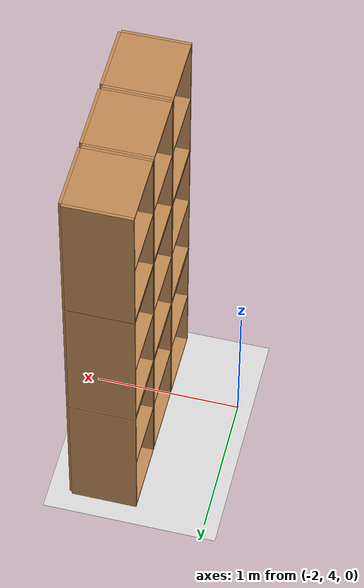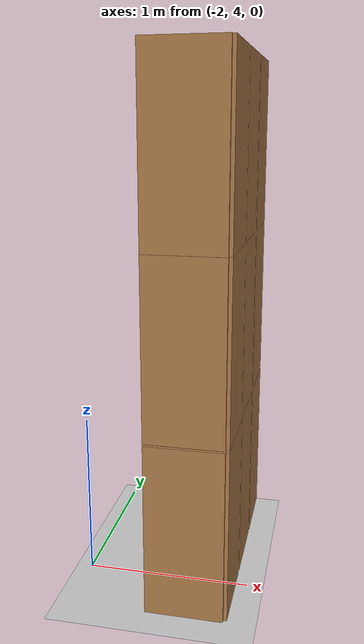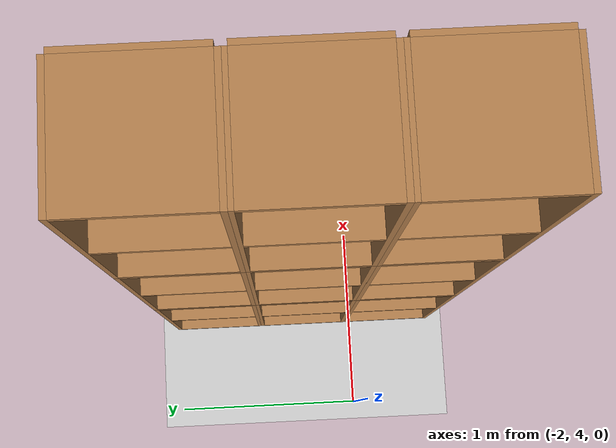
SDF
<sdf version="1.6">
 <world name="default">
  <model name="ground_plane">
   <static>1</static>
   <link name="link">
    <collision name="collision">
     <geometry><plane><normal>0 0 1</normal><size>100 100</size></plane></geometry>
     <surface>
      <contact><collide_bitmask>65535</collide_bitmask></contact>
      <friction><ode><mu>100</mu><mu2>50</mu2></ode></friction>
     </surface>
    </collision>
    <visual name="visual">
     <cast_shadows>0</cast_shadows>
     <geometry><plane><normal>0 0 1</normal><size>100 100</size></plane></geometry>
     <material>
      <script><uri>file://media/materials/scripts/gazebo.material</uri><name>Gazebo/Grey</name></script>
     </material>
    </visual>
   </link>
  </model>
  <model name="Locker18_clone_4_clone_2_clone_2_clone_0">
   <model name="Locker18">
    <model name="Locker3">
     <model name="cabinet">
      <static>1</static>
      <link name="cabinet_bottom_plate">
       <inertial>
        <pose>0 0 -1 0 -0 0</pose>
        <inertia><ixx>2.05</ixx><ixy>0</ixy><ixz>0</ixz><iyy>2.05</iyy><iyz>0</iyz><izz>2.05</izz></inertia>
        <mass>25</mass>
       </inertial>
       <collision name="cabinet_bottom_plate_geom">
        <pose>0 0 0.01 0 -0 0</pose>
        <geometry><box><size>0.45 0.45 0.02</size></box></geometry>
       </collision>
       <visual name="cabinet_bottom_plate_geom_visual">
        <pose>0 0 0.01 0 -0 0</pose>
        <geometry><box><size>0.45 0.45 0.02</size></box></geometry>
        <material>
         <script><uri>file://media/materials/scripts/gazebo.material</uri><name>Gazebo/Wood</name></script>
        </material>
       </visual>
       <collision name="cabinet_bottom_plate_geom_cabinet_back_plate">
        <pose>0.235 0 0.51 0 -0 0</pose>
        <geometry><box><size>0.02 0.45 1.02</size></box></geometry>
       </collision>
       <visual name="cabinet_bottom_plate_geom_cabinet_back_plate_visual">
        <pose>0.235 0 0.51 0 -0 0</pose>
        <geometry><box><size>0.02 0.45 1.02</size></box></geometry>
        <material>
         <script><uri>file://media/materials/scripts/gazebo.material</uri><name>Gazebo/Wood</name></script>
        </material>
       </visual>
       <collision name="cabinet_bottom_plate_geom_cabinet_left_plate">
        <pose>0 0.235 0.51 0 -0 0</pose>
        <geometry><box><size>0.45 0.02 1.02</size></box></geometry>
       </collision>
       <visual name="cabinet_bottom_plate_geom_cabinet_left_plate_visual">
        <pose>0 0.235 0.51 0 -0 0</pose>
        <geometry><box><size>0.45 0.02 1.02</size></box></geometry>
        <material>
         <script><uri>file://media/materials/scripts/gazebo.material</uri><name>Gazebo/Wood</name></script>
        </material>
       </visual>
       <collision name="cabinet_bottom_plate_geom_cabinet_middle_plate">
        <pose>0 0 0.51 0 -0 0</pose>
        <geometry><box><size>0.45 0.45 0.02</size></box></geometry>
       </collision>
       <visual name="cabinet_bottom_plate_geom_cabinet_middle_plate_visual">
        <pose>0 0 0.51 0 -0 0</pose>
        <geometry><box><size>0.45 0.45 0.02</size></box></geometry>
        <material>
         <script><uri>file://media/materials/scripts/gazebo.material</uri><name>Gazebo/Wood</name></script>
        </material>
       </visual>
       <collision name="cabinet_bottom_plate_geom_cabinet_right_plate">
        <pose>0 -0.235 0.51 0 -0 0</pose>
        <geometry><box><size>0.45 0.02 1.02</size></box></geometry>
       </collision>
       <visual name="cabinet_bottom_plate_geom_cabinet_right_plate_visual">
        <pose>0 -0.235 0.51 0 -0 0</pose>
        <geometry><box><size>0.45 0.02 1.02</size></box></geometry>
        <material>
         <script><uri>file://media/materials/scripts/gazebo.material</uri><name>Gazebo/Wood</name></script>
        </material>
       </visual>
       <collision name="cabinet_bottom_plate_geom_cabinet_top_plate">
        <pose>0 0 1.01 0 -0 0</pose>
        <geometry><box><size>0.45 0.45 0.02</size></box></geometry>
       </collision>
       <visual name="cabinet_bottom_plate_geom_cabinet_top_plate_visual">
        <pose>0 0 1.01 0 -0 0</pose>
        <geometry><box><size>0.45 0.45 0.02</size></box></geometry>
        <material>
         <script><uri>file://media/materials/scripts/gazebo.material</uri><name>Gazebo/Wood</name></script>
        </material>
       </visual>
      </link>
      <pose>-0.676968 1.45758 0 0 -0 0</pose>
     </model>
     <model name="cabinet_clone">
      <static>1</static>
      <link name="cabinet_bottom_plate">
       <inertial>
        <pose>0 0 -1 0 -0 0</pose>
        <inertia><ixx>2.05</ixx><ixy>0</ixy><ixz>0</ixz><iyy>2.05</iyy><iyz>0</iyz><izz>2.05</izz></inertia>
        <mass>25</mass>
       </inertial>
       <collision name="cabinet_bottom_plate_geom">
        <pose>0 0 0.01 0 -0 0</pose>
        <geometry><box><size>0.45 0.45 0.02</size></box></geometry>
       </collision>
       <visual name="cabinet_bottom_plate_geom_visual">
        <pose>0 0 0.01 0 -0 0</pose>
        <geometry><box><size>0.45 0.45 0.02</size></box></geometry>
        <material>
         <script><uri>file://media/materials/scripts/gazebo.material</uri><name>Gazebo/Wood</name></script>
        </material>
       </visual>
       <collision name="cabinet_bottom_plate_geom_cabinet_back_plate">
        <pose>0.235 0 0.51 0 -0 0</pose>
        <geometry><box><size>0.02 0.45 1.02</size></box></geometry>
       </collision>
       <visual name="cabinet_bottom_plate_geom_cabinet_back_plate_visual">
        <pose>0.235 0 0.51 0 -0 0</pose>
        <geometry><box><size>0.02 0.45 1.02</size></box></geometry>
        <material>
         <script><uri>file://media/materials/scripts/gazebo.material</uri><name>Gazebo/Wood</name></script>
        </material>
       </visual>
       <collision name="cabinet_bottom_plate_geom_cabinet_left_plate">
        <pose>0 0.235 0.51 0 -0 0</pose>
        <geometry><box><size>0.45 0.02 1.02</size></box></geometry>
       </collision>
       <visual name="cabinet_bottom_plate_geom_cabinet_left_plate_visual">
        <pose>0 0.235 0.51 0 -0 0</pose>
        <geometry><box><size>0.45 0.02 1.02</size></box></geometry>
        <material>
         <script><uri>file://media/materials/scripts/gazebo.material</uri><name>Gazebo/Wood</name></script>
        </material>
       </visual>
       <collision name="cabinet_bottom_plate_geom_cabinet_middle_plate">
        <pose>0 0 0.51 0 -0 0</pose>
        <geometry><box><size>0.45 0.45 0.02</size></box></geometry>
       </collision>
       <visual name="cabinet_bottom_plate_geom_cabinet_middle_plate_visual">
        <pose>0 0 0.51 0 -0 0</pose>
        <geometry><box><size>0.45 0.45 0.02</size></box></geometry>
        <material>
         <script><uri>file://media/materials/scripts/gazebo.material</uri><name>Gazebo/Wood</name></script>
        </material>
       </visual>
       <collision name="cabinet_bottom_plate_geom_cabinet_right_plate">
        <pose>0 -0.235 0.51 0 -0 0</pose>
        <geometry><box><size>0.45 0.02 1.02</size></box></geometry>
       </collision>
       <visual name="cabinet_bottom_plate_geom_cabinet_right_plate_visual">
        <pose>0 -0.235 0.51 0 -0 0</pose>
        <geometry><box><size>0.45 0.02 1.02</size></box></geometry>
        <material>
         <script><uri>file://media/materials/scripts/gazebo.material</uri><name>Gazebo/Wood</name></script>
        </material>
       </visual>
       <collision name="cabinet_bottom_plate_geom_cabinet_top_plate">
        <pose>0 0 1.01 0 -0 0</pose>
        <geometry><box><size>0.45 0.45 0.02</size></box></geometry>
       </collision>
       <visual name="cabinet_bottom_plate_geom_cabinet_top_plate_visual">
        <pose>0 0 1.01 0 -0 0</pose>
        <geometry><box><size>0.45 0.45 0.02</size></box></geometry>
        <material>
         <script><uri>file://media/materials/scripts/gazebo.material</uri><name>Gazebo/Wood</name></script>
        </material>
       </visual>
      </link>
      <pose>-0.676968 0.970971 0 0 -0 0</pose>
     </model>
     <model name="cabinet_clone_0">
      <static>1</static>
      <link name="cabinet_bottom_plate">
       <inertial>
        <pose>0 0 -1 0 -0 0</pose>
        <inertia><ixx>2.05</ixx><ixy>0</ixy><ixz>0</ixz><iyy>2.05</iyy><iyz>0</iyz><izz>2.05</izz></inertia>
        <mass>25</mass>
       </inertial>
       <collision name="cabinet_bottom_plate_geom">
        <pose>0 0 0.01 0 -0 0</pose>
        <geometry><box><size>0.45 0.45 0.02</size></box></geometry>
       </collision>
       <visual name="cabinet_bottom_plate_geom_visual">
        <pose>0 0 0.01 0 -0 0</pose>
        <geometry><box><size>0.45 0.45 0.02</size></box></geometry>
        <material>
         <script><uri>file://media/materials/scripts/gazebo.material</uri><name>Gazebo/Wood</name></script>
        </material>
       </visual>
       <collision name="cabinet_bottom_plate_geom_cabinet_back_plate">
        <pose>0.235 0 0.51 0 -0 0</pose>
        <geometry><box><size>0.02 0.45 1.02</size></box></geometry>
       </collision>
       <visual name="cabinet_bottom_plate_geom_cabinet_back_plate_visual">
        <pose>0.235 0 0.51 0 -0 0</pose>
        <geometry><box><size>0.02 0.45 1.02</size></box></geometry>
        <material>
         <script><uri>file://media/materials/scripts/gazebo.material</uri><name>Gazebo/Wood</name></script>
        </material>
       </visual>
       <collision name="cabinet_bottom_plate_geom_cabinet_left_plate">
        <pose>0 0.235 0.51 0 -0 0</pose>
        <geometry><box><size>0.45 0.02 1.02</size></box></geometry>
       </collision>
       <visual name="cabinet_bottom_plate_geom_cabinet_left_plate_visual">
        <pose>0 0.235 0.51 0 -0 0</pose>
        <geometry><box><size>0.45 0.02 1.02</size></box></geometry>
        <material>
         <script><uri>file://media/materials/scripts/gazebo.material</uri><name>Gazebo/Wood</name></script>
        </material>
       </visual>
       <collision name="cabinet_bottom_plate_geom_cabinet_middle_plate">
        <pose>0 0 0.51 0 -0 0</pose>
        <geometry><box><size>0.45 0.45 0.02</size></box></geometry>
       </collision>
       <visual name="cabinet_bottom_plate_geom_cabinet_middle_plate_visual">
        <pose>0 0 0.51 0 -0 0</pose>
        <geometry><box><size>0.45 0.45 0.02</size></box></geometry>
        <material>
         <script><uri>file://media/materials/scripts/gazebo.material</uri><name>Gazebo/Wood</name></script>
        </material>
       </visual>
       <collision name="cabinet_bottom_plate_geom_cabinet_right_plate">
        <pose>0 -0.235 0.51 0 -0 0</pose>
        <geometry><box><size>0.45 0.02 1.02</size></box></geometry>
       </collision>
       <visual name="cabinet_bottom_plate_geom_cabinet_right_plate_visual">
        <pose>0 -0.235 0.51 0 -0 0</pose>
        <geometry><box><size>0.45 0.02 1.02</size></box></geometry>
        <material>
         <script><uri>file://media/materials/scripts/gazebo.material</uri><name>Gazebo/Wood</name></script>
        </material>
       </visual>
       <collision name="cabinet_bottom_plate_geom_cabinet_top_plate">
        <pose>0 0 1.01 0 -0 0</pose>
        <geometry><box><size>0.45 0.45 0.02</size></box></geometry>
       </collision>
       <visual name="cabinet_bottom_plate_geom_cabinet_top_plate_visual">
        <pose>0 0 1.01 0 -0 0</pose>
        <geometry><box><size>0.45 0.45 0.02</size></box></geometry>
        <material>
         <script><uri>file://media/materials/scripts/gazebo.material</uri><name>Gazebo/Wood</name></script>
        </material>
       </visual>
      </link>
      <pose>-0.676968 0.48391 0 0 -0 0</pose>
     </model>
     <static>0</static>
     <pose>0 3e-06 -1.02763 0 -0 0</pose>
    </model>
    <model name="Locker3_clone">
     <model name="cabinet">
      <static>1</static>
      <link name="cabinet_bottom_plate">
       <inertial>
        <pose>0 0 -1 0 -0 0</pose>
        <inertia><ixx>2.05</ixx><ixy>0</ixy><ixz>0</ixz><iyy>2.05</iyy><iyz>0</iyz><izz>2.05</izz></inertia>
        <mass>25</mass>
       </inertial>
       <collision name="cabinet_bottom_plate_geom">
        <pose>0 0 0.01 0 -0 0</pose>
        <geometry><box><size>0.45 0.45 0.02</size></box></geometry>
       </collision>
       <visual name="cabinet_bottom_plate_geom_visual">
        <pose>0 0 0.01 0 -0 0</pose>
        <geometry><box><size>0.45 0.45 0.02</size></box></geometry>
        <material>
         <script><uri>file://media/materials/scripts/gazebo.material</uri><name>Gazebo/Wood</name></script>
        </material>
       </visual>
       <collision name="cabinet_bottom_plate_geom_cabinet_back_plate">
        <pose>0.235 0 0.51 0 -0 0</pose>
        <geometry><box><size>0.02 0.45 1.02</size></box></geometry>
       </collision>
       <visual name="cabinet_bottom_plate_geom_cabinet_back_plate_visual">
        <pose>0.235 0 0.51 0 -0 0</pose>
        <geometry><box><size>0.02 0.45 1.02</size></box></geometry>
        <material>
         <script><uri>file://media/materials/scripts/gazebo.material</uri><name>Gazebo/Wood</name></script>
        </material>
       </visual>
       <collision name="cabinet_bottom_plate_geom_cabinet_left_plate">
        <pose>0 0.235 0.51 0 -0 0</pose>
        <geometry><box><size>0.45 0.02 1.02</size></box></geometry>
       </collision>
       <visual name="cabinet_bottom_plate_geom_cabinet_left_plate_visual">
        <pose>0 0.235 0.51 0 -0 0</pose>
        <geometry><box><size>0.45 0.02 1.02</size></box></geometry>
        <material>
         <script><uri>file://media/materials/scripts/gazebo.material</uri><name>Gazebo/Wood</name></script>
        </material>
       </visual>
       <collision name="cabinet_bottom_plate_geom_cabinet_middle_plate">
        <pose>0 0 0.51 0 -0 0</pose>
        <geometry><box><size>0.45 0.45 0.02</size></box></geometry>
       </collision>
       <visual name="cabinet_bottom_plate_geom_cabinet_middle_plate_visual">
        <pose>0 0 0.51 0 -0 0</pose>
        <geometry><box><size>0.45 0.45 0.02</size></box></geometry>
        <material>
         <script><uri>file://media/materials/scripts/gazebo.material</uri><name>Gazebo/Wood</name></script>
        </material>
       </visual>
       <collision name="cabinet_bottom_plate_geom_cabinet_right_plate">
        <pose>0 -0.235 0.51 0 -0 0</pose>
        <geometry><box><size>0.45 0.02 1.02</size></box></geometry>
       </collision>
       <visual name="cabinet_bottom_plate_geom_cabinet_right_plate_visual">
        <pose>0 -0.235 0.51 0 -0 0</pose>
        <geometry><box><size>0.45 0.02 1.02</size></box></geometry>
        <material>
         <script><uri>file://media/materials/scripts/gazebo.material</uri><name>Gazebo/Wood</name></script>
        </material>
       </visual>
       <collision name="cabinet_bottom_plate_geom_cabinet_top_plate">
        <pose>0 0 1.01 0 -0 0</pose>
        <geometry><box><size>0.45 0.45 0.02</size></box></geometry>
       </collision>
       <visual name="cabinet_bottom_plate_geom_cabinet_top_plate_visual">
        <pose>0 0 1.01 0 -0 0</pose>
        <geometry><box><size>0.45 0.45 0.02</size></box></geometry>
        <material>
         <script><uri>file://media/materials/scripts/gazebo.material</uri><name>Gazebo/Wood</name></script>
        </material>
       </visual>
      </link>
      <pose>-0.676968 1.45758 0 0 -0 0</pose>
     </model>
     <model name="cabinet_clone">
      <static>1</static>
      <link name="cabinet_bottom_plate">
       <inertial>
        <pose>0 0 -1 0 -0 0</pose>
        <inertia><ixx>2.05</ixx><ixy>0</ixy><ixz>0</ixz><iyy>2.05</iyy><iyz>0</iyz><izz>2.05</izz></inertia>
        <mass>25</mass>
       </inertial>
       <collision name="cabinet_bottom_plate_geom">
        <pose>0 0 0.01 0 -0 0</pose>
        <geometry><box><size>0.45 0.45 0.02</size></box></geometry>
       </collision>
       <visual name="cabinet_bottom_plate_geom_visual">
        <pose>0 0 0.01 0 -0 0</pose>
        <geometry><box><size>0.45 0.45 0.02</size></box></geometry>
        <material>
         <script><uri>file://media/materials/scripts/gazebo.material</uri><name>Gazebo/Wood</name></script>
        </material>
       </visual>
       <collision name="cabinet_bottom_plate_geom_cabinet_back_plate">
        <pose>0.235 0 0.51 0 -0 0</pose>
        <geometry><box><size>0.02 0.45 1.02</size></box></geometry>
       </collision>
       <visual name="cabinet_bottom_plate_geom_cabinet_back_plate_visual">
        <pose>0.235 0 0.51 0 -0 0</pose>
        <geometry><box><size>0.02 0.45 1.02</size></box></geometry>
        <material>
         <script><uri>file://media/materials/scripts/gazebo.material</uri><name>Gazebo/Wood</name></script>
        </material>
       </visual>
       <collision name="cabinet_bottom_plate_geom_cabinet_left_plate">
        <pose>0 0.235 0.51 0 -0 0</pose>
        <geometry><box><size>0.45 0.02 1.02</size></box></geometry>
       </collision>
       <visual name="cabinet_bottom_plate_geom_cabinet_left_plate_visual">
        <pose>0 0.235 0.51 0 -0 0</pose>
        <geometry><box><size>0.45 0.02 1.02</size></box></geometry>
        <material>
         <script><uri>file://media/materials/scripts/gazebo.material</uri><name>Gazebo/Wood</name></script>
        </material>
       </visual>
       <collision name="cabinet_bottom_plate_geom_cabinet_middle_plate">
        <pose>0 0 0.51 0 -0 0</pose>
        <geometry><box><size>0.45 0.45 0.02</size></box></geometry>
       </collision>
       <visual name="cabinet_bottom_plate_geom_cabinet_middle_plate_visual">
        <pose>0 0 0.51 0 -0 0</pose>
        <geometry><box><size>0.45 0.45 0.02</size></box></geometry>
        <material>
         <script><uri>file://media/materials/scripts/gazebo.material</uri><name>Gazebo/Wood</name></script>
        </material>
       </visual>
       <collision name="cabinet_bottom_plate_geom_cabinet_right_plate">
        <pose>0 -0.235 0.51 0 -0 0</pose>
        <geometry><box><size>0.45 0.02 1.02</size></box></geometry>
       </collision>
       <visual name="cabinet_bottom_plate_geom_cabinet_right_plate_visual">
        <pose>0 -0.235 0.51 0 -0 0</pose>
        <geometry><box><size>0.45 0.02 1.02</size></box></geometry>
        <material>
         <script><uri>file://media/materials/scripts/gazebo.material</uri><name>Gazebo/Wood</name></script>
        </material>
       </visual>
       <collision name="cabinet_bottom_plate_geom_cabinet_top_plate">
        <pose>0 0 1.01 0 -0 0</pose>
        <geometry><box><size>0.45 0.45 0.02</size></box></geometry>
       </collision>
       <visual name="cabinet_bottom_plate_geom_cabinet_top_plate_visual">
        <pose>0 0 1.01 0 -0 0</pose>
        <geometry><box><size>0.45 0.45 0.02</size></box></geometry>
        <material>
         <script><uri>file://media/materials/scripts/gazebo.material</uri><name>Gazebo/Wood</name></script>
        </material>
       </visual>
      </link>
      <pose>-0.676968 0.970971 0 0 -0 0</pose>
     </model>
     <model name="cabinet_clone_0">
      <static>1</static>
      <link name="cabinet_bottom_plate">
       <inertial>
        <pose>0 0 -1 0 -0 0</pose>
        <inertia><ixx>2.05</ixx><ixy>0</ixy><ixz>0</ixz><iyy>2.05</iyy><iyz>0</iyz><izz>2.05</izz></inertia>
        <mass>25</mass>
       </inertial>
       <collision name="cabinet_bottom_plate_geom">
        <pose>0 0 0.01 0 -0 0</pose>
        <geometry><box><size>0.45 0.45 0.02</size></box></geometry>
       </collision>
       <visual name="cabinet_bottom_plate_geom_visual">
        <pose>0 0 0.01 0 -0 0</pose>
        <geometry><box><size>0.45 0.45 0.02</size></box></geometry>
        <material>
         <script><uri>file://media/materials/scripts/gazebo.material</uri><name>Gazebo/Wood</name></script>
        </material>
       </visual>
       <collision name="cabinet_bottom_plate_geom_cabinet_back_plate">
        <pose>0.235 0 0.51 0 -0 0</pose>
        <geometry><box><size>0.02 0.45 1.02</size></box></geometry>
       </collision>
       <visual name="cabinet_bottom_plate_geom_cabinet_back_plate_visual">
        <pose>0.235 0 0.51 0 -0 0</pose>
        <geometry><box><size>0.02 0.45 1.02</size></box></geometry>
        <material>
         <script><uri>file://media/materials/scripts/gazebo.material</uri><name>Gazebo/Wood</name></script>
        </material>
       </visual>
       <collision name="cabinet_bottom_plate_geom_cabinet_left_plate">
        <pose>0 0.235 0.51 0 -0 0</pose>
        <geometry><box><size>0.45 0.02 1.02</size></box></geometry>
       </collision>
       <visual name="cabinet_bottom_plate_geom_cabinet_left_plate_visual">
        <pose>0 0.235 0.51 0 -0 0</pose>
        <geometry><box><size>0.45 0.02 1.02</size></box></geometry>
        <material>
         <script><uri>file://media/materials/scripts/gazebo.material</uri><name>Gazebo/Wood</name></script>
        </material>
       </visual>
       <collision name="cabinet_bottom_plate_geom_cabinet_middle_plate">
        <pose>0 0 0.51 0 -0 0</pose>
        <geometry><box><size>0.45 0.45 0.02</size></box></geometry>
       </collision>
       <visual name="cabinet_bottom_plate_geom_cabinet_middle_plate_visual">
        <pose>0 0 0.51 0 -0 0</pose>
        <geometry><box><size>0.45 0.45 0.02</size></box></geometry>
        <material>
         <script><uri>file://media/materials/scripts/gazebo.material</uri><name>Gazebo/Wood</name></script>
        </material>
       </visual>
       <collision name="cabinet_bottom_plate_geom_cabinet_right_plate">
        <pose>0 -0.235 0.51 0 -0 0</pose>
        <geometry><box><size>0.45 0.02 1.02</size></box></geometry>
       </collision>
       <visual name="cabinet_bottom_plate_geom_cabinet_right_plate_visual">
        <pose>0 -0.235 0.51 0 -0 0</pose>
        <geometry><box><size>0.45 0.02 1.02</size></box></geometry>
        <material>
         <script><uri>file://media/materials/scripts/gazebo.material</uri><name>Gazebo/Wood</name></script>
        </material>
       </visual>
       <collision name="cabinet_bottom_plate_geom_cabinet_top_plate">
        <pose>0 0 1.01 0 -0 0</pose>
        <geometry><box><size>0.45 0.45 0.02</size></box></geometry>
       </collision>
       <visual name="cabinet_bottom_plate_geom_cabinet_top_plate_visual">
        <pose>0 0 1.01 0 -0 0</pose>
        <geometry><box><size>0.45 0.45 0.02</size></box></geometry>
        <material>
         <script><uri>file://media/materials/scripts/gazebo.material</uri><name>Gazebo/Wood</name></script>
        </material>
       </visual>
      </link>
      <pose>-0.676968 0.48391 0 0 -0 0</pose>
     </model>
     <static>0</static>
     <pose>0 3e-06 0.003717 0 -0 0</pose>
    </model>
    <model name="Locker3_clone_clone">
     <model name="cabinet">
      <static>1</static>
      <link name="cabinet_bottom_plate">
       <inertial>
        <pose>0 0 -1 0 -0 0</pose>
        <inertia><ixx>2.05</ixx><ixy>0</ixy><ixz>0</ixz><iyy>2.05</iyy><iyz>0</iyz><izz>2.05</izz></inertia>
        <mass>25</mass>
       </inertial>
       <collision name="cabinet_bottom_plate_geom">
        <pose>0 0 0.01 0 -0 0</pose>
        <geometry><box><size>0.45 0.45 0.02</size></box></geometry>
       </collision>
       <visual name="cabinet_bottom_plate_geom_visual">
        <pose>0 0 0.01 0 -0 0</pose>
        <geometry><box><size>0.45 0.45 0.02</size></box></geometry>
        <material>
         <script><uri>file://media/materials/scripts/gazebo.material</uri><name>Gazebo/Wood</name></script>
        </material>
       </visual>
       <collision name="cabinet_bottom_plate_geom_cabinet_back_plate">
        <pose>0.235 0 0.51 0 -0 0</pose>
        <geometry><box><size>0.02 0.45 1.02</size></box></geometry>
       </collision>
       <visual name="cabinet_bottom_plate_geom_cabinet_back_plate_visual">
        <pose>0.235 0 0.51 0 -0 0</pose>
        <geometry><box><size>0.02 0.45 1.02</size></box></geometry>
        <material>
         <script><uri>file://media/materials/scripts/gazebo.material</uri><name>Gazebo/Wood</name></script>
        </material>
       </visual>
       <collision name="cabinet_bottom_plate_geom_cabinet_left_plate">
        <pose>0 0.235 0.51 0 -0 0</pose>
        <geometry><box><size>0.45 0.02 1.02</size></box></geometry>
       </collision>
       <visual name="cabinet_bottom_plate_geom_cabinet_left_plate_visual">
        <pose>0 0.235 0.51 0 -0 0</pose>
        <geometry><box><size>0.45 0.02 1.02</size></box></geometry>
        <material>
         <script><uri>file://media/materials/scripts/gazebo.material</uri><name>Gazebo/Wood</name></script>
        </material>
       </visual>
       <collision name="cabinet_bottom_plate_geom_cabinet_middle_plate">
        <pose>0 0 0.51 0 -0 0</pose>
        <geometry><box><size>0.45 0.45 0.02</size></box></geometry>
       </collision>
       <visual name="cabinet_bottom_plate_geom_cabinet_middle_plate_visual">
        <pose>0 0 0.51 0 -0 0</pose>
        <geometry><box><size>0.45 0.45 0.02</size></box></geometry>
        <material>
         <script><uri>file://media/materials/scripts/gazebo.material</uri><name>Gazebo/Wood</name></script>
        </material>
       </visual>
       <collision name="cabinet_bottom_plate_geom_cabinet_right_plate">
        <pose>0 -0.235 0.51 0 -0 0</pose>
        <geometry><box><size>0.45 0.02 1.02</size></box></geometry>
       </collision>
       <visual name="cabinet_bottom_plate_geom_cabinet_right_plate_visual">
        <pose>0 -0.235 0.51 0 -0 0</pose>
        <geometry><box><size>0.45 0.02 1.02</size></box></geometry>
        <material>
         <script><uri>file://media/materials/scripts/gazebo.material</uri><name>Gazebo/Wood</name></script>
        </material>
       </visual>
       <collision name="cabinet_bottom_plate_geom_cabinet_top_plate">
        <pose>0 0 1.01 0 -0 0</pose>
        <geometry><box><size>0.45 0.45 0.02</size></box></geometry>
       </collision>
       <visual name="cabinet_bottom_plate_geom_cabinet_top_plate_visual">
        <pose>0 0 1.01 0 -0 0</pose>
        <geometry><box><size>0.45 0.45 0.02</size></box></geometry>
        <material>
         <script><uri>file://media/materials/scripts/gazebo.material</uri><name>Gazebo/Wood</name></script>
        </material>
       </visual>
      </link>
      <pose>-0.676968 1.45758 0 0 -0 0</pose>
     </model>
     <model name="cabinet_clone">
      <static>1</static>
      <link name="cabinet_bottom_plate">
       <inertial>
        <pose>0 0 -1 0 -0 0</pose>
        <inertia><ixx>2.05</ixx><ixy>0</ixy><ixz>0</ixz><iyy>2.05</iyy><iyz>0</iyz><izz>2.05</izz></inertia>
        <mass>25</mass>
       </inertial>
       <collision name="cabinet_bottom_plate_geom">
        <pose>0 0 0.01 0 -0 0</pose>
        <geometry><box><size>0.45 0.45 0.02</size></box></geometry>
       </collision>
       <visual name="cabinet_bottom_plate_geom_visual">
        <pose>0 0 0.01 0 -0 0</pose>
        <geometry><box><size>0.45 0.45 0.02</size></box></geometry>
        <material>
         <script><uri>file://media/materials/scripts/gazebo.material</uri><name>Gazebo/Wood</name></script>
        </material>
       </visual>
       <collision name="cabinet_bottom_plate_geom_cabinet_back_plate">
        <pose>0.235 0 0.51 0 -0 0</pose>
        <geometry><box><size>0.02 0.45 1.02</size></box></geometry>
       </collision>
       <visual name="cabinet_bottom_plate_geom_cabinet_back_plate_visual">
        <pose>0.235 0 0.51 0 -0 0</pose>
        <geometry><box><size>0.02 0.45 1.02</size></box></geometry>
        <material>
         <script><uri>file://media/materials/scripts/gazebo.material</uri><name>Gazebo/Wood</name></script>
        </material>
       </visual>
       <collision name="cabinet_bottom_plate_geom_cabinet_left_plate">
        <pose>0 0.235 0.51 0 -0 0</pose>
        <geometry><box><size>0.45 0.02 1.02</size></box></geometry>
       </collision>
       <visual name="cabinet_bottom_plate_geom_cabinet_left_plate_visual">
        <pose>0 0.235 0.51 0 -0 0</pose>
        <geometry><box><size>0.45 0.02 1.02</size></box></geometry>
        <material>
         <script><uri>file://media/materials/scripts/gazebo.material</uri><name>Gazebo/Wood</name></script>
        </material>
       </visual>
       <collision name="cabinet_bottom_plate_geom_cabinet_middle_plate">
        <pose>0 0 0.51 0 -0 0</pose>
        <geometry><box><size>0.45 0.45 0.02</size></box></geometry>
       </collision>
       <visual name="cabinet_bottom_plate_geom_cabinet_middle_plate_visual">
        <pose>0 0 0.51 0 -0 0</pose>
        <geometry><box><size>0.45 0.45 0.02</size></box></geometry>
        <material>
         <script><uri>file://media/materials/scripts/gazebo.material</uri><name>Gazebo/Wood</name></script>
        </material>
       </visual>
       <collision name="cabinet_bottom_plate_geom_cabinet_right_plate">
        <pose>0 -0.235 0.51 0 -0 0</pose>
        <geometry><box><size>0.45 0.02 1.02</size></box></geometry>
       </collision>
       <visual name="cabinet_bottom_plate_geom_cabinet_right_plate_visual">
        <pose>0 -0.235 0.51 0 -0 0</pose>
        <geometry><box><size>0.45 0.02 1.02</size></box></geometry>
        <material>
         <script><uri>file://media/materials/scripts/gazebo.material</uri><name>Gazebo/Wood</name></script>
        </material>
       </visual>
       <collision name="cabinet_bottom_plate_geom_cabinet_top_plate">
        <pose>0 0 1.01 0 -0 0</pose>
        <geometry><box><size>0.45 0.45 0.02</size></box></geometry>
       </collision>
       <visual name="cabinet_bottom_plate_geom_cabinet_top_plate_visual">
        <pose>0 0 1.01 0 -0 0</pose>
        <geometry><box><size>0.45 0.45 0.02</size></box></geometry>
        <material>
         <script><uri>file://media/materials/scripts/gazebo.material</uri><name>Gazebo/Wood</name></script>
        </material>
       </visual>
      </link>
      <pose>-0.676968 0.970971 0 0 -0 0</pose>
     </model>
     <model name="cabinet_clone_0">
      <static>1</static>
      <link name="cabinet_bottom_plate">
       <inertial>
        <pose>0 0 -1 0 -0 0</pose>
        <inertia><ixx>2.05</ixx><ixy>0</ixy><ixz>0</ixz><iyy>2.05</iyy><iyz>0</iyz><izz>2.05</izz></inertia>
        <mass>25</mass>
       </inertial>
       <collision name="cabinet_bottom_plate_geom">
        <pose>0 0 0.01 0 -0 0</pose>
        <geometry><box><size>0.45 0.45 0.02</size></box></geometry>
       </collision>
       <visual name="cabinet_bottom_plate_geom_visual">
        <pose>0 0 0.01 0 -0 0</pose>
        <geometry><box><size>0.45 0.45 0.02</size></box></geometry>
        <material>
         <script><uri>file://media/materials/scripts/gazebo.material</uri><name>Gazebo/Wood</name></script>
        </material>
       </visual>
       <collision name="cabinet_bottom_plate_geom_cabinet_back_plate">
        <pose>0.235 0 0.51 0 -0 0</pose>
        <geometry><box><size>0.02 0.45 1.02</size></box></geometry>
       </collision>
       <visual name="cabinet_bottom_plate_geom_cabinet_back_plate_visual">
        <pose>0.235 0 0.51 0 -0 0</pose>
        <geometry><box><size>0.02 0.45 1.02</size></box></geometry>
        <material>
         <script><uri>file://media/materials/scripts/gazebo.material</uri><name>Gazebo/Wood</name></script>
        </material>
       </visual>
       <collision name="cabinet_bottom_plate_geom_cabinet_left_plate">
        <pose>0 0.235 0.51 0 -0 0</pose>
        <geometry><box><size>0.45 0.02 1.02</size></box></geometry>
       </collision>
       <visual name="cabinet_bottom_plate_geom_cabinet_left_plate_visual">
        <pose>0 0.235 0.51 0 -0 0</pose>
        <geometry><box><size>0.45 0.02 1.02</size></box></geometry>
        <material>
         <script><uri>file://media/materials/scripts/gazebo.material</uri><name>Gazebo/Wood</name></script>
        </material>
       </visual>
       <collision name="cabinet_bottom_plate_geom_cabinet_middle_plate">
        <pose>0 0 0.51 0 -0 0</pose>
        <geometry><box><size>0.45 0.45 0.02</size></box></geometry>
       </collision>
       <visual name="cabinet_bottom_plate_geom_cabinet_middle_plate_visual">
        <pose>0 0 0.51 0 -0 0</pose>
        <geometry><box><size>0.45 0.45 0.02</size></box></geometry>
        <material>
         <script><uri>file://media/materials/scripts/gazebo.material</uri><name>Gazebo/Wood</name></script>
        </material>
       </visual>
       <collision name="cabinet_bottom_plate_geom_cabinet_right_plate">
        <pose>0 -0.235 0.51 0 -0 0</pose>
        <geometry><box><size>0.45 0.02 1.02</size></box></geometry>
       </collision>
       <visual name="cabinet_bottom_plate_geom_cabinet_right_plate_visual">
        <pose>0 -0.235 0.51 0 -0 0</pose>
        <geometry><box><size>0.45 0.02 1.02</size></box></geometry>
        <material>
         <script><uri>file://media/materials/scripts/gazebo.material</uri><name>Gazebo/Wood</name></script>
        </material>
       </visual>
       <collision name="cabinet_bottom_plate_geom_cabinet_top_plate">
        <pose>0 0 1.01 0 -0 0</pose>
        <geometry><box><size>0.45 0.45 0.02</size></box></geometry>
       </collision>
       <visual name="cabinet_bottom_plate_geom_cabinet_top_plate_visual">
        <pose>0 0 1.01 0 -0 0</pose>
        <geometry><box><size>0.45 0.45 0.02</size></box></geometry>
        <material>
         <script><uri>file://media/materials/scripts/gazebo.material</uri><name>Gazebo/Wood</name></script>
        </material>
       </visual>
      </link>
      <pose>-0.676968 0.48391 0 0 -0 0</pose>
     </model>
     <static>0</static>
     <pose>0 3e-06 1.02391 0 -0 0</pose>
    </model>
    <static>0</static>
    <pose>-0 4e-06 4e-06 0 -0 0</pose>
   </model>
   <static>0</static>
   <pose>-0.627236 3.3073 1.08672 0 -0 0</pose>
  </model>
 </world>
</sdf>
